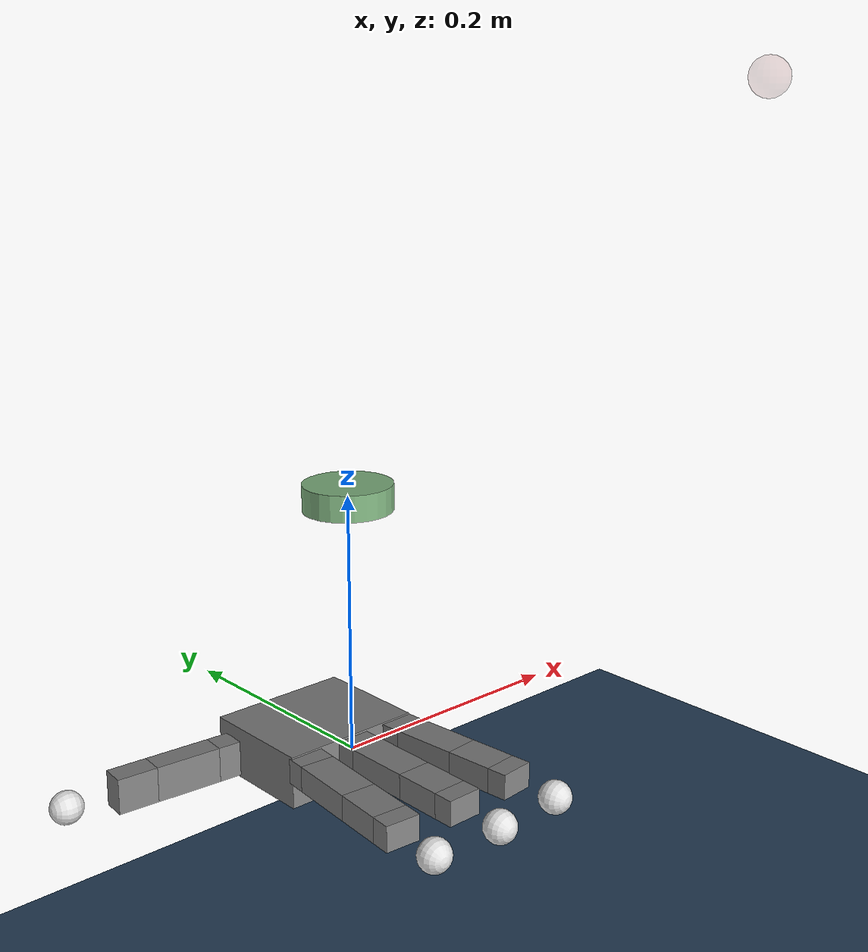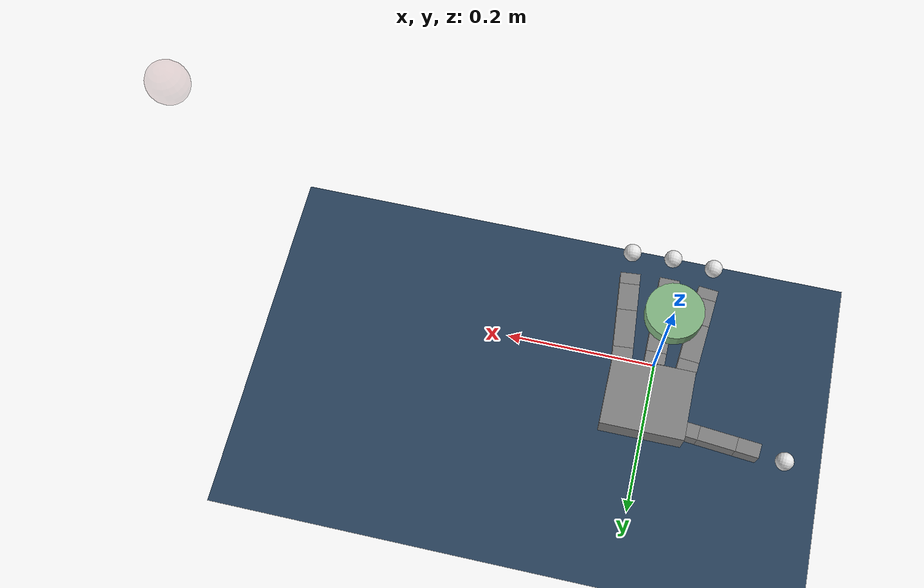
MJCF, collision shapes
<mujoco model="Metahand Hand Cube Rotation">
  <include file="metahand.xml"/>

  <size memory="1M"/>

  <option integrator="implicitfast" iterations="100" ls_iterations="50"/>

  <custom>
    <!-- agent -->
    <numeric name="agent_planner" data="0" />
    <numeric name="agent_horizon" data="0.5" />
    <numeric name="agent_timestep" data="0.01" />
    <numeric name="agent_policy_width" data="0.0035" />
    <numeric name="sampling_spline_points" data="6" />
    <numeric name="sampling_exploration" data="0.1" />
    <numeric name="sampling_trajectories" data="10" />
    <numeric name="sampling_representation" data="2" />
    <numeric name="robust_xfrc" data="0.004" />
    <numeric name="gradient_spline_points" data="6" />

    <!-- cem -->
    <numeric name="n_elite" data="10" />
    <numeric name="std_min" data="0.2" />
  </custom>

  <asset>
    <texture type="skybox" builtin="gradient" rgb1="0.3 0.5 0.7" rgb2="0 0 0" width="512" height="3072"/>
    <texture type="2d" name="groundplane" builtin="checker" mark="edge" rgb1="0.2 0.3 0.4" rgb2="0.1 0.2 0.3"
      markrgb="0.8 0.8 0.8" width="300" height="300"/>
    <material name="groundplane" texture="groundplane" texuniform="true" texrepeat="5 5" reflectance="0.2"/>
  </asset>

  <!-- Set the camera viewpoint -->
  <statistic extent="0.4" center="0.3 0.1 0"/>
  <visual>
    <quality shadowsize="8192"/>
    <global azimuth="180" elevation="-30"/>
  </visual>

  <!-- Set default friction coefficient -->
  <default>
    <geom friction=".3"/>
  </default>

  <!-- Create the scene, including floor. -->
  <worldbody>
    <light pos="0 -0.1 0.5" dir="0 0.2 -1" diffuse="0.7 0.7 0.7" specular="0.3 0.3 0.3"
        directional="true" castshadow="true"/>
    <geom name="floor" pos="0 0 -0.2" size="0 0 0.05" type="plane" material="groundplane"/>
    <!-- add a cylinder -->
    <body name="object" pos="0 0 0.2">
      <freejoint/>
      <inertial pos="0 0 0" mass="0.05" diaginertia="0.0001 0.0001 0.0001"/>
      <geom type="cylinder" size="0.034 0.01" rgba="0.5 0.7 0.5 1" condim="3" priority="1" friction="0.8 0.002 0.002" material="groundplane" density="186"/>
    </body>
    <!-- mocap body for hand -->
    <body name="rf_tip_target" pos="0.5 0 .5" quat="0 1 0 0" mocap="true">
      <geom type="sphere" size=".02" contype="0" conaffinity="0" rgba=".6 .3 .3 .2"/>
    </body>
    <body name="mf_tip_target" pos="0.5 0 .5" quat="0 1 0 0" mocap="true">
      <geom type="sphere" size=".02" contype="0" conaffinity="0" rgba=".6 .3 .3 .2"/>
    </body>
    <body name="ff_tip_target" pos="0.5 0 .5" quat="0 1 0 0" mocap="true">
      <geom type="sphere" size=".02" contype="0" conaffinity="0" rgba=".6 .3 .3 .2"/>
    </body>
    <body name="th_tip_target" pos="0.5 0 .5" quat="0 1 0 0" mocap="true">
      <geom type="sphere" size=".02" contype="0" conaffinity="0" rgba=".6 .3 .3 .2"/>
    </body>
  </worldbody>

  <sensor>
    <!-- Residuals -->
    <user name="Object Position" dim="3" user="1 75 0 100 0.02 2"/>
    <user name="Object Orientation" dim="3" user="0 7.5 0 10" />
    <user name="Object Velocity" dim="3" user="0 10 0 20" />
    <user name="Actuation" dim="16" user="0 1 0.0 10" />
    <user name="Grasp" dim="16" user="0 0.1 0.0 10" />
    <user name="Joint Vel" dim="16" user="0 1.0e-3 0.0 0.1" />

    <framepos name="trace0" objtype="body" objname="object"/>
  </sensor>

  <keyframe>
    <key name="home" qpos='0.0143862 1.42557 0.145901 0.172863 1.182 1.08728 0.793195 0.00212516 -0.00140372 1.1927 0.0642763 0.183578 0.0750524 1.44143 0.339084 0.235215 -0.00842207 -0.0125362 0.14 1 0 0 0'/>
  </keyframe>
</mujoco>

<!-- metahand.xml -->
<mujoco model="allegro_right">
  <compiler angle="radian" meshdir="assets" autolimits="true"/>

  <option cone="elliptic" impratio="10"/>

  <default>
    <default class="allegro_right">
      <joint axis="0 1 0" damping=".1"/>
      <position kp="0.5"/>
      <geom density="800"/>

      <default class="visual">
        <geom type="mesh" contype="0" conaffinity="0" group="2" material="black"/>
        <default class="palm_visual">
          <geom mesh="base_link"/>
        </default>
        <default class="base_visual">
          <geom mesh="link_0.0"/>
        </default>
        <default class="proximal_visual">
          <geom mesh="link_1.0"/>
        </default>
        <default class="medial_visual">
          <geom mesh="link_2.0"/>
        </default>
        <default class="distal_visual">
          <geom mesh="link_3.0"/>
        </default>
        <default class="fingertip_visual">
          <geom pos="0 0 0.0267" material="white" mesh="link_3.0_tip"/>
        </default>
        <default class="thumbtip_visual">
          <geom pos="0 0 0.0423" material="white" mesh="link_15.0_tip"/>
        </default>
      </default>

      <default class="collision">
        <geom group="3" type="box" mass="0"/>
        <default class="palm_collision">
          <geom size="0.0204 0.0565 0.0475" pos="-0.0093 0 -0.0475"/>
        </default>
        <default class="base_collision">
          <geom size="0.0098 0.01375 0.0082" pos="0 0 0.0082"/>
          <default class="thumb_base_collision">
            <geom size="0.0179 0.017 0.02275" pos="-0.0179 0.009 0.0145"/>
          </default>
        </default>
        <default class="proximal_collision">
          <geom size="0.0098 0.01375 0.027" pos="0 0 0.027"/>
          <default class="thumb_proximal_collision">
            <geom size="0.0098 0.01375 0.00885" pos="0 0 0.00885"/>
          </default>
        </default>
        <default class="medial_collision">
          <geom size="0.0098 0.01375 0.0192" pos="0 0 0.0192"/>
          <default class="thumb_medial_collision">
            <geom size="0.0098 0.01375 0.0257" pos="0 0 0.0257"/>
          </default>
        </default>
        <default class="distal_collision">
          <geom size="0.0098 0.01375 0.008" pos="0 0 0.008"/>
          <default class="thumb_distal_collision">
            <geom size="0.0098 0.01375 0.0157" pos="0 0 0.0157"/>
          </default>
        </default>
        <default class="fingertip_collision">
          <geom group="2" type="sphere" size="0.01235" pos="0 0 0.0515" rgba="0.9 0.9 0.9 1" />
          <default class="thumbtip_collision">
            <geom group="2" type="sphere" size="0.01235" pos="0 0 0.0671" rgba="0.9 0.9 0.9 1" />
          </default>
        </default>
      </default>

      <default class="base">
        <joint axis="0 0 1" range="-0.47 0.47"/>
        <position ctrlrange="-0.47 0.47"/>
      </default>
      <default class="proximal">
        <joint range="-0.196 1.61"/>
        <position ctrlrange="-0.196 1.61"/>
      </default>
      <default class="medial">
        <joint range="-0.174 1.709"/>
        <position ctrlrange="-0.174 1.709"/>
      </default>
      <default class="distal">
        <joint range="-0.227 1.618"/>
        <position ctrlrange="-0.227 1.618"/>
      </default>
      <default class="thumb_base">
        <joint axis="-1 0 0" range="0.263 1.396"/>
        <position ctrlrange="0.263 1.396"/>
      </default>
      <default class="thumb_proximal">
        <joint axis="0 0 1" range="-0.105 1.163"/>
        <position ctrlrange="-0.105 1.163"/>
      </default>
      <default class="thumb_medial">
        <joint range="-0.189 1.644"/>
        <position ctrlrange="-0.189 1.644"/>
      </default>
      <default class="thumb_distal">
        <joint range="-0.162 1.719"/>
        <position ctrlrange="-0.162 1.719"/>
      </default>
    </default>
  </default>

  <asset>
    <material name="black" rgba="0.2 0.2 0.2 1"/>
    <material name="white" rgba="0.9 0.9 0.9 1"/>

    <mesh file="base_link.stl"/>
    <mesh file="link_0.0.stl"/>
    <mesh file="link_1.0.stl"/>
    <mesh file="link_2.0.stl"/>
    <mesh file="link_3.0.stl"/>
    <mesh file="link_3.0_tip.stl"/>
    <mesh file="link_12.0_right.stl"/>
    <mesh file="link_13.0.stl"/>
    <mesh file="link_14.0.stl"/>
    <mesh file="link_15.0.stl"/>
    <mesh file="link_15.0_tip.stl"/>
  </asset>

  <worldbody>
    <body name="palm" quat="1 1 -1 1" childclass="allegro_right">
      <site name="grasp_site" pos="0.0 0.0 0.0" group="4"/>
      <geom class="palm_visual" mesh="base_link"/>
      <geom class="palm_collision"/>
      <!-- First finger -->
      <body name="ff_base" pos="0 0.0435 -0.001542" quat="0.999048 -0.0436194 0 0">
        <joint name="ffj0" class="base"/>
        <geom class="base_visual"/>
        <geom class="base_collision"/>
        <body name="ff_proximal" pos="0 0 0.0164">
          <joint name="ffj1" class="proximal"/>
          <geom class="proximal_visual"/>
          <geom class="proximal_collision"/>
          <body name="ff_medial" pos="0 0 0.054">
            <joint name="ffj2" class="medial"/>
            <geom class="medial_visual"/>
            <geom class="medial_collision"/>
            <body name="ff_distal" pos="0 0 0.0384">
              <joint name="ffj3" class="distal"/>
              <geom class="distal_visual"/>
              <geom class="distal_collision"/>
              <body name="ff_tip">
                <geom class="fingertip_visual"/>
                <geom class="fingertip_collision"/>
                <site name="tip" pos="0 0 0"/>
                <site name="ff_tip" pos="0 0 0"/>
              </body>
            </body>
          </body>
        </body>
      </body>
      <!-- Thumb -->
      <body name="th_base" pos="-0.0182 0.019333 -0.045987" quat="0.477714 -0.521334 -0.521334 -0.477714">
        <joint name="thj0" class="thumb_base"/>
        <geom class="visual" mesh="link_12.0_right"/>
        <geom class="thumb_base_collision"/>
        <body name="th_proximal" pos="-0.027 0.005 0.0399">
          <joint name="thj1" class="thumb_proximal"/>
          <geom class="visual" mesh="link_13.0"/>
          <geom class="thumb_proximal_collision"/>
          <body name="th_medial" pos="0 0 0.0177">
            <joint name="thj2" class="thumb_medial"/>
            <geom class="visual" mesh="link_14.0"/>
            <geom class="thumb_medial_collision"/>
            <body name="th_distal" pos="0 0 0.0514">
              <joint name="thj3" class="thumb_distal"/>
              <geom class="visual" mesh="link_15.0"/>
              <geom class="thumb_distal_collision"/>
              <body name="th_tip">
                <geom class="thumbtip_visual"/>
                <geom class="thumbtip_collision"/>
                <site name="th_tip" pos="0 0 0"/>
              </body>
            </body>
          </body>
        </body>
      </body>
      <!-- Middle finger -->
      <body name="mf_base" pos="0 0 0.0007">
        <joint name="mfj0" class="base"/>
        <geom class="base_visual"/>
        <geom class="base_collision"/>
        <body name="mf_proximal" pos="0 0 0.0164">
          <joint name="mfj1" class="proximal"/>
          <geom class="proximal_visual"/>
          <geom class="proximal_collision"/>
          <body name="mf_medial" pos="0 0 0.054">
            <joint name="mfj2" class="medial"/>
            <geom class="medial_visual"/>
            <geom class="medial_collision"/>
            <body name="mf_distal" pos="0 0 0.0384">
              <joint name="mfj3" class="distal"/>
              <geom class="distal_visual"/>
              <geom class="distal_collision"/>
              <body name="mf_tip">
                <geom class="fingertip_visual"/>
                <geom class="fingertip_collision"/>
                <site name="mf_tip" pos="0 0 0"/>
              </body>
            </body>
          </body>
        </body>
      </body>
      <!-- Ring finger -->
      <body name="rf_base" pos="0 -0.0435 -0.001542" quat="0.999048 0.0436194 0 0">
        <joint name="rfj0" class="base"/>
        <geom class="base_visual"/>
        <geom class="base_collision"/>
        <body name="rf_proximal" pos="0 0 0.0164">
          <joint name="rfj1" class="proximal"/>
          <geom class="proximal_visual"/>
          <geom class="proximal_collision"/>
          <body name="rf_medial" pos="0 0 0.054">
            <joint name="rfj2" class="medial"/>
            <geom class="medial_visual"/>
            <geom class="medial_collision"/>
            <body name="rf_distal" pos="0 0 0.0384">
              <joint name="rfj3" class="distal"/>
              <geom class="distal_visual"/>
              <geom class="distal_collision"/>
              <body name="rf_tip">
                <geom class="fingertip_visual"/>
                <geom class="fingertip_collision"/>
                <site name="rf_tip" pos="0 0 0"/>
              </body>
            </body>
          </body>
        </body>
      </body>
    </body>
  </worldbody>

  <contact>
    <exclude body1="palm" body2="ff_base"/>
    <exclude body1="palm" body2="mf_base"/>
    <exclude body1="palm" body2="rf_base"/>
    <exclude body1="palm" body2="th_base"/>
    <exclude body1="palm" body2="th_proximal"/>
  </contact>

  <actuator>
    <position name="ffa0" joint="ffj0" class="base"/>
    <position name="ffa1" joint="ffj1" class="proximal"/>
    <position name="ffa2" joint="ffj2" class="medial"/>
    <position name="ffa3" joint="ffj3" class="distal"/>
    <position name="tha0" joint="thj0" class="thumb_base"/>
    <position name="tha1" joint="thj1" class="thumb_proximal"/>
    <position name="tha2" joint="thj2" class="thumb_medial"/>
    <position name="tha3" joint="thj3" class="thumb_distal"/>
    <position name="mfa0" joint="mfj0" class="base"/>
    <position name="mfa1" joint="mfj1" class="proximal"/>
    <position name="mfa2" joint="mfj2" class="medial"/>
    <position name="mfa3" joint="mfj3" class="distal"/>
    <position name="rfa0" joint="rfj0" class="base"/>
    <position name="rfa1" joint="rfj1" class="proximal"/>
    <position name="rfa2" joint="rfj2" class="medial"/>
    <position name="rfa3" joint="rfj3" class="distal"/>
  </actuator>

  <!-- Traces for visualizing rollouts -->
  <sensor>
    <framepos name="trace1" objtype="body" objname="rf_tip"/>
    <framepos name="trace2" objtype="body" objname="ff_tip"/>
    <framepos name="trace3" objtype="body" objname="mf_tip"/>
    <framepos name="trace4" objtype="body" objname="th_tip"/>
  </sensor>
</mujoco>
